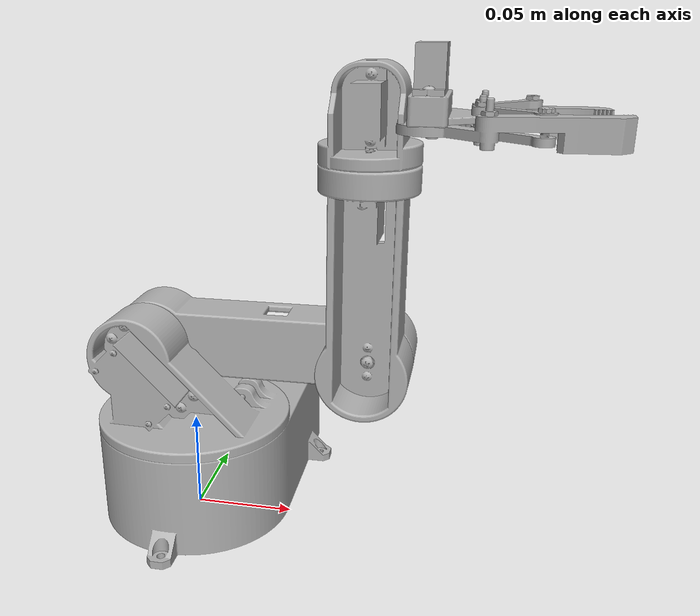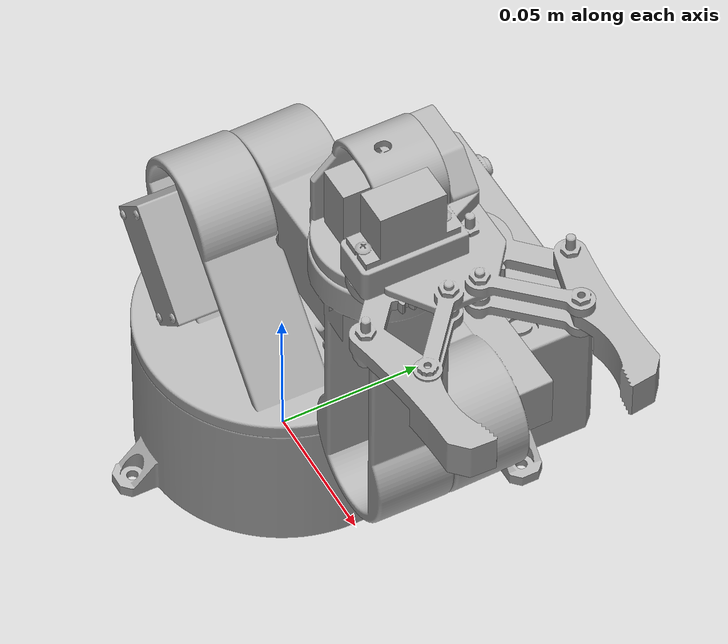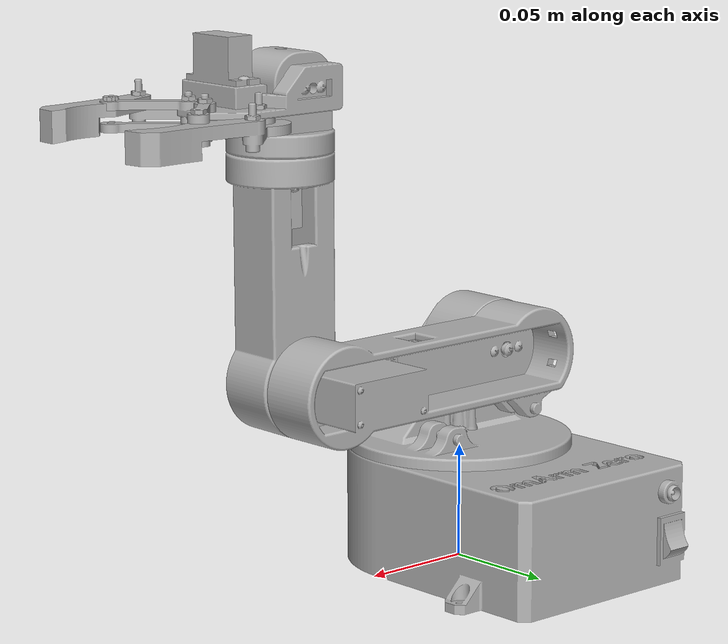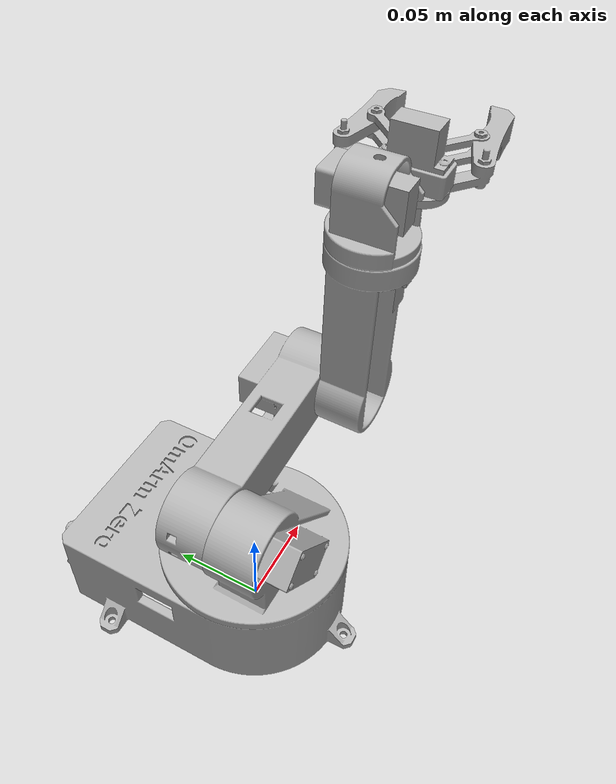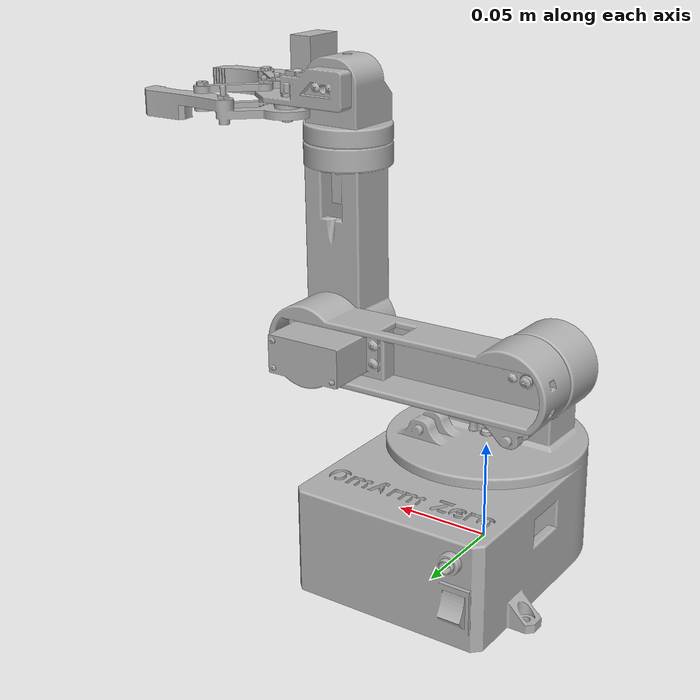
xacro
<?xml version="1.0" ?>
<robot name="ava" xmlns:xacro="http://www.ros.org/wiki/xacro">

<xacro:include filename="$(find ava_description)/urdf/materials.xacro" />
<xacro:include filename="$(find ava_description)/urdf/ava.gazebo" />

<link name="world"/>

<joint name="world_to_base" type="fixed">
  <origin xyz="0 0 0" rpy="0 0 0"/>
  <parent link="world"/>
  <child link="base_link"/>
</joint>

<link name="base_link">
  <inertial>
    <origin xyz="-0.0008862089688185305 0.019817228665032917 0.028036352675664372" rpy="0 0 0"/>
    <mass value="0.2095325128799142"/>
    <inertia ixx="0.000388" iyy="0.000273" izz="0.000577" ixy="1.2e-05" iyz="-1.5e-05" ixz="2e-06"/>
  </inertial>
  <visual>
    <origin xyz="0 0 0" rpy="0 0 0"/>
    <geometry>
      <mesh filename="file://$(find ava_description)/meshes/base_link.stl" scale="0.001 0.001 0.001"/>
    </geometry>
    <material name="silver"/>
  </visual>
  <collision>
    <origin xyz="0 0 0" rpy="0 0 0"/>
    <geometry>
      <mesh filename="file://$(find ava_description)/meshes/base_link.stl" scale="0.001 0.001 0.001"/>
    </geometry>
  </collision>
</link>

<link name="base_link_upper_1">
  <inertial>
    <origin xyz="-0.008722579889644722 -0.00874036182748487 0.018069237585535955" rpy="0 0 0"/>
    <mass value="0.10721945182395987"/>
    <inertia ixx="7.3e-05" iyy="8.2e-05" izz="8.7e-05" ixy="-8e-06" iyz="1.3e-05" ixz="1.7e-05"/>
  </inertial>
  <visual>
    <origin xyz="-0.0 0.0 -0.05087" rpy="0 0 0"/>
    <geometry>
      <mesh filename="file://$(find ava_description)/meshes/base_link_upper_1.stl" scale="0.001 0.001 0.001"/>
    </geometry>
    <material name="silver"/>
  </visual>
  <collision>
    <origin xyz="-0.0 0.0 -0.05087" rpy="0 0 0"/>
    <geometry>
      <mesh filename="file://$(find ava_description)/meshes/base_link_upper_1.stl" scale="0.001 0.001 0.001"/>
    </geometry>
  </collision>
</link>

<link name="arm_link_1_1">
  <inertial>
    <origin xyz="-0.07242343534933285 0.01563513294240669 0.00023721497850980044" rpy="0 0 0"/>
    <mass value="0.08663975869268098"/>
    <inertia ixx="2.3e-05" iyy="0.000186" izz="0.000185" ixy="1.4e-05" iyz="-0.0" ixz="0.0"/>
  </inertial>
  <visual>
    <origin xyz="0.023144 -0.000378 -0.090222" rpy="0 0 0"/>
    <geometry>
      <mesh filename="file://$(find ava_description)/meshes/arm_link_1_1.stl" scale="0.001 0.001 0.001"/>
    </geometry>
    <material name="silver"/>
  </visual>
  <collision>
    <origin xyz="0.023144 -0.000378 -0.090222" rpy="0 0 0"/>
    <geometry>
      <mesh filename="file://$(find ava_description)/meshes/arm_link_1_1.stl" scale="0.001 0.001 0.001"/>
    </geometry>
  </collision>
</link>

<link name="arm_link_2_1">
  <inertial>
    <origin xyz="0.00015804896485055453 -0.01270587118388409 0.04984429147277507" rpy="0 0 0"/>
    <mass value="0.060803292617032635"/>
    <inertia ixx="9.7e-05" iyy="0.0001" izz="1.5e-05" ixy="0.0" iyz="4e-06" ixz="-1e-06"/>
  </inertial>
  <visual>
    <origin xyz="0.136253 -0.002225 -0.090468" rpy="0 0 0"/>
    <geometry>
      <mesh filename="file://$(find ava_description)/meshes/arm_link_2_1.stl" scale="0.001 0.001 0.001"/>
    </geometry>
    <material name="silver"/>
  </visual>
  <collision>
    <origin xyz="0.136253 -0.002225 -0.090468" rpy="0 0 0"/>
    <geometry>
      <mesh filename="file://$(find ava_description)/meshes/arm_link_2_1.stl" scale="0.001 0.001 0.001"/>
    </geometry>
  </collision>
</link>

<link name="arm_link_3_1">
  <inertial>
    <origin xyz="0.0001215015690353427 -0.002345015525753438 0.016815892606081573" rpy="0 0 0"/>
    <mass value="0.03164600488955133"/>
    <inertia ixx="8e-06" iyy="8e-06" izz="6e-06" ixy="0.0" iyz="0.0" ixz="-0.0"/>
  </inertial>
  <visual>
    <origin xyz="0.135791 0.013036 -0.187515" rpy="0 0 0"/>
    <geometry>
      <mesh filename="file://$(find ava_description)/meshes/arm_link_3_1.stl" scale="0.001 0.001 0.001"/>
    </geometry>
    <material name="silver"/>
  </visual>
  <collision>
    <origin xyz="0.135791 0.013036 -0.187515" rpy="0 0 0"/>
    <geometry>
      <mesh filename="file://$(find ava_description)/meshes/arm_link_3_1.stl" scale="0.001 0.001 0.001"/>
    </geometry>
  </collision>
</link>

<link name="gripper_base_1">
  <inertial>
    <origin xyz="0.0263798372560361 0.01305200515069535 0.000385697943080493" rpy="0 0 0"/>
    <mass value="0.021632951264497"/>
    <inertia ixx="6e-06" iyy="9e-06" izz="1.1e-05" ixy="-2e-06" iyz="1e-06" ixz="-1e-06"/>
  </inertial>
  <visual>
    <origin xyz="0.135597 0.02829 -0.215762" rpy="0 0 0"/>
    <geometry>
      <mesh filename="file://$(find ava_description)/meshes/gripper_base_1.stl" scale="0.001 0.001 0.001"/>
    </geometry>
    <material name="silver"/>
  </visual>
  <collision>
    <origin xyz="0.135597 0.02829 -0.215762" rpy="0 0 0"/>
    <geometry>
      <mesh filename="file://$(find ava_description)/meshes/gripper_base_1.stl" scale="0.001 0.001 0.001"/>
    </geometry>
  </collision>
</link>

<link name="gripper_left_1">
  <inertial>
    <origin xyz="0.03709318127194455 0.011182961139350179 0.0005390356106469429" rpy="0 0 0"/>
    <mass value="0.008701120209128247"/>
    <inertia ixx="1e-06" iyy="7e-06" izz="7e-06" ixy="-1e-06" iyz="0.0" ixz="0.0"/>
  </inertial>
  <visual>
    <origin xyz="0.110514 0.001842 -0.224973" rpy="0 0 0"/>
    <geometry>
      <mesh filename="file://$(find ava_description)/meshes/gripper_left_1.stl" scale="0.001 0.001 0.001"/>
    </geometry>
    <material name="silver"/>
  </visual>
  <collision>
    <origin xyz="0.110514 0.001842 -0.224973" rpy="0 0 0"/>
    <geometry>
      <mesh filename="file://$(find ava_description)/meshes/gripper_left_1.stl" scale="0.001 0.001 0.001"/>
    </geometry>
  </collision>
</link>

<link name="gripper_right_1">
  <inertial>
    <origin xyz="0.03455751613844488 -0.01388037081632396 0.002978789606622928" rpy="0 0 0"/>
    <mass value="0.009050838376335017"/>
    <inertia ixx="1e-06" iyy="7e-06" izz="8e-06" ixy="2e-06" iyz="-0.0" ixz="0.0"/>
  </inertial>
  <visual>
    <origin xyz="0.11054 0.029602 -0.225319" rpy="0 0 0"/>
    <geometry>
      <mesh filename="file://$(find ava_description)/meshes/gripper_right_1.stl" scale="0.001 0.001 0.001"/>
    </geometry>
    <material name="silver"/>
  </visual>
  <collision>
    <origin xyz="0.11054 0.029602 -0.225319" rpy="0 0 0"/>
    <geometry>
      <mesh filename="file://$(find ava_description)/meshes/gripper_right_1.stl" scale="0.001 0.001 0.001"/>
    </geometry>
  </collision>
</link>

<joint name="Revolute 1" type="revolute">
  <origin xyz="0.0 0.0 0.05087" rpy="0 0 0"/>
  <parent link="base_link"/>
  <child link="base_link_upper_1"/>
  <axis xyz="0.0 0.0 1.0"/>
  <dynamics damping="2.0" friction="0.02"/>
  <limit lower="0.0" upper="3.14" effort="40.0" velocity="0.2"/>
</joint>

<joint name="Revolute 2" type="revolute">
  <origin xyz="-0.023144 0.000378 0.039352" rpy="0 3.14 0"/>
  <parent link="base_link_upper_1"/>
  <child link="arm_link_1_1"/>
  <axis xyz="0.016327 0.999867 0.0"/>
  <dynamics damping="2.0" friction="0.02"/>
  <limit lower="-3.14" upper="0.0" effort="40.0" velocity="0.2"/>
</joint>

<joint name="Revolute 3" type="revolute">
  <origin xyz="-0.113109 0.001847 0.000246" rpy="0 3.14 0"/>
  <parent link="arm_link_1_1"/>
  <child link="arm_link_2_1"/>
  <axis xyz="-0.016327 -0.999867 0.0"/>
  <dynamics damping="2.0" friction="0.02"/>
  <limit lower="-3.14" upper="0.0" effort="40.0" velocity="0.2"/>
</joint>

<joint name="Revolute 4" type="revolute">
  <origin xyz="0.000462 -0.015261 0.097047" rpy="0 0 3.14"/>
  <parent link="arm_link_2_1"/>
  <child link="arm_link_3_1"/>
  <axis xyz="0.007329 -0.000135 0.999973"/>
  <dynamics damping="1.5" friction="0.02"/>
  <limit lower="-3.14" upper="0.0" effort="35.0" velocity="0.2"/>
</joint>

<joint name="Revolute 5" type="revolute">
  <origin xyz="0.000194 -0.015254 0.028247" rpy="0 3.14 0"/>
  <parent link="arm_link_3_1"/>
  <child link="gripper_base_1"/>
  <axis xyz="-0.000888 -1.0 -0.000129"/>
  <dynamics damping="1.5" friction="0.02"/>
  <limit lower="-3.14" upper="0.0" effort="30.0" velocity="0.2"/>
</joint>

<joint name="Revolute 6" type="revolute">
  <origin xyz="0.025083 0.026448 0.009211" rpy="0 0 0"/>
  <parent link="gripper_base_1"/>
  <child link="gripper_left_1"/>
  <axis xyz="0.002278 0.000127 -0.999997"/>
  <dynamics damping="1.0" friction="0.02"/>
  <!-- Full servo range: open = -1.57 (servo 180deg), closed = +1.57 (servo 0deg),
       full speed (user directive: gripper is ONE servo, no interpolation fuss). -->
  <limit lower="-1.6" upper="1.6" effort="10.0" velocity="4.0"/>
</joint>

<joint name="Revolute 7" type="revolute">
  <origin xyz="0.025057 -0.001312 0.009557" rpy="0 0 0"/>
  <parent link="gripper_base_1"/>
  <child link="gripper_right_1"/>
  <axis xyz="-0.002278 -0.000127 0.999997"/>
  <dynamics damping="1.0" friction="0.02"/>
  <limit lower="-1.6" upper="1.6" effort="10.0" velocity="4.0"/>
</joint>

<ros2_control name="GazeboSystem" type="system">
  <hardware>
    <plugin>gz_ros2_control/GazeboSimSystem</plugin>
  </hardware>

  <joint name="Revolute 1">
    <command_interface name="position"/>
    <state_interface name="position"/>
    <state_interface name="velocity"/>
  </joint>

  <joint name="Revolute 2">
    <command_interface name="position"/>
    <state_interface name="position"/>
    <state_interface name="velocity"/>
  </joint>

  <joint name="Revolute 3">
    <command_interface name="position"/>
    <state_interface name="position"/>
    <state_interface name="velocity"/>
  </joint>

  <joint name="Revolute 4">
    <command_interface name="position"/>
    <state_interface name="position"/>
    <state_interface name="velocity"/>
  </joint>

  <joint name="Revolute 5">
    <command_interface name="position"/>
    <state_interface name="position"/>
    <state_interface name="velocity"/>
  </joint>

  <joint name="Revolute 6">
    <command_interface name="position"/>
    <state_interface name="position"/>
    <state_interface name="velocity"/>
  </joint>

  <joint name="Revolute 7">
    <command_interface name="position"/>
    <state_interface name="position"/>
    <state_interface name="velocity"/>
  </joint>
</ros2_control>

<link name="tcp"/>
<joint name="gripper_base_to_tcp" type="fixed">
  <origin xyz="0.09 0.015 0.0" rpy="0 1.5708 0"/>
  <parent link="gripper_base_1"/>
  <child link="tcp"/>
</joint>

</robot>

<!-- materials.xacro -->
<robot name="ava" xmlns:xacro="http://www.ros.org/wiki/xacro" >

<material name="silver">
  <color rgba="0.700 0.700 0.700 1.000"/>
</material>

</robot>

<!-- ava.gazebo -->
<robot name="ava" xmlns:xacro="http://www.ros.org/wiki/xacro" >

<xacro:property name="body_color" value="Gazebo/Silver" />

<gazebo>
  <plugin filename="libgz_ros2_control-system.so" name="gz_ros2_control::GazeboSimROS2ControlPlugin">
    <position_proportional_gain>2.5</position_proportional_gain>
    <parameters>$(find ava_description)/config/gazebo_controllers.yaml</parameters>
  </plugin>
</gazebo>

<gazebo reference="base_link">
  <material>${body_color}</material>
  <mu1>0.2</mu1>
  <mu2>0.2</mu2>
  <self_collide>false</self_collide>
  <gravity>true</gravity>
</gazebo>

<gazebo reference="base_link_upper_1">
  <material>${body_color}</material>
  <mu1>0.2</mu1>
  <mu2>0.2</mu2>
  <self_collide>false</self_collide>
</gazebo>

<gazebo reference="arm_link_1_1">
  <material>${body_color}</material>
  <mu1>0.2</mu1>
  <mu2>0.2</mu2>
  <self_collide>false</self_collide>
</gazebo>

<gazebo reference="arm_link_2_1">
  <material>${body_color}</material>
  <mu1>0.2</mu1>
  <mu2>0.2</mu2>
  <self_collide>false</self_collide>
</gazebo>

<gazebo reference="arm_link_3_1">
  <material>${body_color}</material>
  <mu1>0.2</mu1>
  <mu2>0.2</mu2>
  <self_collide>false</self_collide>
</gazebo>

<gazebo reference="gripper_base_1">
  <material>${body_color}</material>
  <mu1>0.2</mu1>
  <mu2>0.2</mu2>
  <self_collide>false</self_collide>
</gazebo>

<gazebo reference="gripper_left_1">
  <material>${body_color}</material>
  <mu1>0.2</mu1>
  <mu2>0.2</mu2>
  <self_collide>false</self_collide>
</gazebo>

<gazebo reference="gripper_right_1">
  <material>${body_color}</material>
  <mu1>0.2</mu1>
  <mu2>0.2</mu2>
  <self_collide>false</self_collide>
</gazebo>

</robot>
